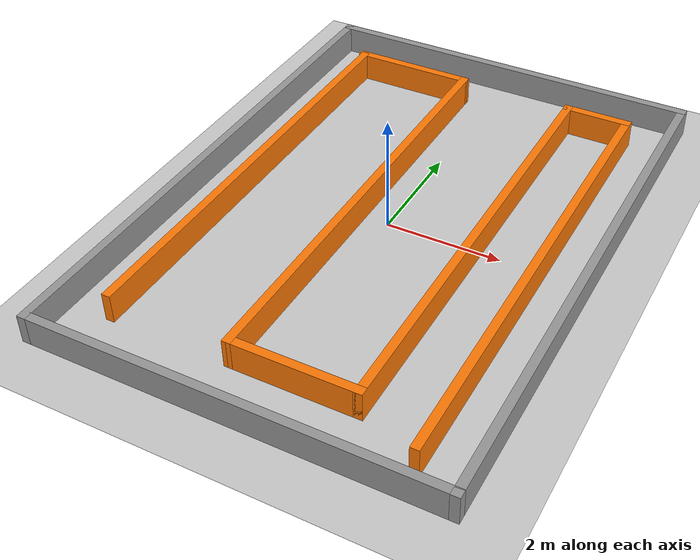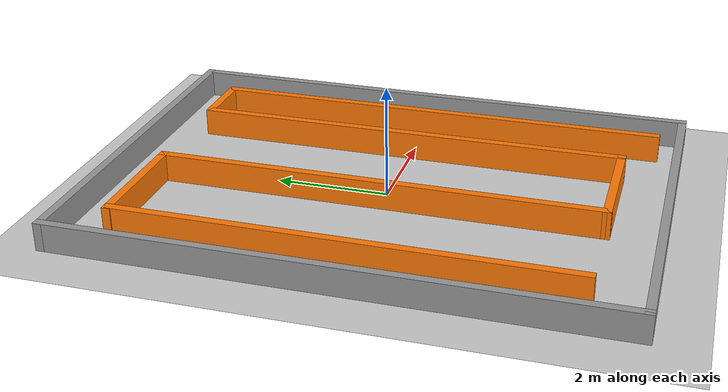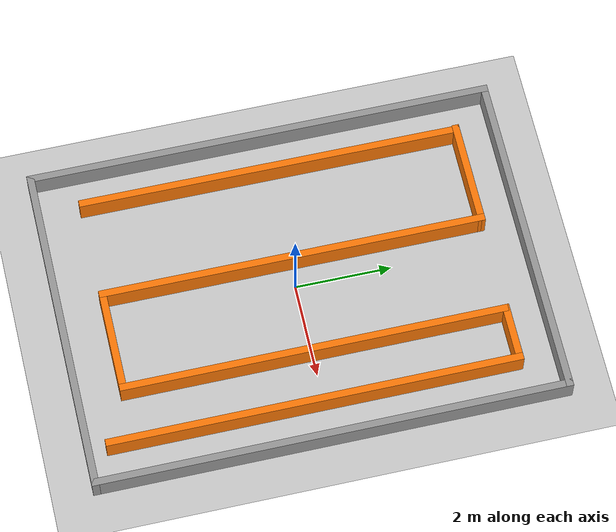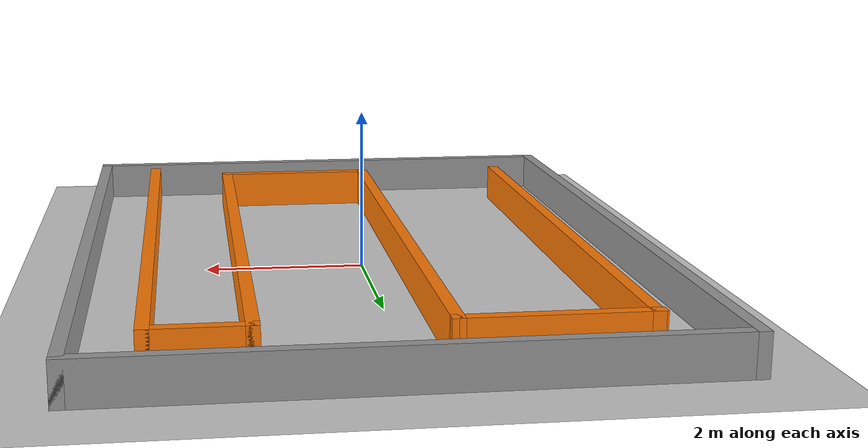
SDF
<sdf version="1.7">
 <world name="default">
  <light name="sun" type="directional">
   <pose>0 0 10 0 -0 0</pose>
   <diffuse>0.8 0.8 0.8 1</diffuse>
   <specular>0.2 0.2 0.2 1</specular>
   <attenuation>
    <range>1000</range>
    <constant>0.9</constant>
    <linear>0.01</linear>
    <quadratic>0.001</quadratic>
   </attenuation>
   <direction>-0.5 0.1 -0.9</direction>
   <spot><inner_angle>0</inner_angle><outer_angle>0</outer_angle><falloff>0</falloff></spot>
  </light>
  <model name="ground_plane">
   <static>1</static>
   <link name="link">
    <collision name="collision">
     <geometry><plane><normal>0 0 1</normal><size>100 100</size></plane></geometry>
     <surface><friction><ode><mu>100</mu><mu2>50</mu2></ode></friction></surface>
    </collision>
    <visual name="visual">
     <cast_shadows>0</cast_shadows>
     <geometry><plane><normal>0 0 1</normal><size>100 100</size></plane></geometry>
     <material>
      <script><uri>file://media/materials/scripts/gazebo.material</uri><name>Gazebo/Grey</name></script>
     </material>
    </visual>
   </link>
  </model>
  <gravity>0 0 -9.8</gravity>
  <magnetic_field>6e-06 2.3e-05 -4.2e-05</magnetic_field>
  <atmosphere type="adiabatic"/>
  <physics type="ode">
   <max_step_size>0.001</max_step_size>
   <real_time_factor>1</real_time_factor>
   <real_time_update_rate>1000</real_time_update_rate>
  </physics>
  <scene><ambient>0.4 0.4 0.4 1</ambient><background>0.7 0.7 0.7 1</background><shadows>1</shadows></scene>
  <audio><device>default</device></audio>
  <spherical_coordinates>
   <surface_model>EARTH_WGS84</surface_model>
   <latitude_deg>0</latitude_deg>
   <longitude_deg>0</longitude_deg>
   <elevation>0</elevation>
   <heading_deg>0</heading_deg>
  </spherical_coordinates>
  <model name="teskan">
   <model name="labirin">
    <link name="Wall_10">
     <collision name="Wall_10_Collision">
      <geometry><box><size>8.01802 0.15 0.5</size></box></geometry>
      <pose>0 0 0.25 0 -0 0</pose>
     </collision>
     <visual name="Wall_10_Visual">
      <pose>0 0 0.25 0 -0 0</pose>
      <geometry><box><size>8.01802 0.15 0.5</size></box></geometry>
      <material>
       <script><uri>file://media/materials/scripts/gazebo.material</uri><name>Gazebo/Grey</name></script>
       <ambient>0.996078 0.47451 0.0196078 1</ambient>
      </material>
      <meta><layer>0</layer></meta>
     </visual>
     <pose>-0.535 0.067 0 0 -0 -1.57283</pose>
    </link>
    <link name="Wall_11">
     <collision name="Wall_11_Collision">
      <geometry><box><size>2.25 0.15 0.5</size></box></geometry>
      <pose>0 0 0.25 0 -0 0</pose>
     </collision>
     <visual name="Wall_11_Visual">
      <pose>0 0 0.25 0 -0 0</pose>
      <geometry><box><size>2.25 0.15 0.5</size></box></geometry>
      <material>
       <script><uri>file://media/materials/scripts/gazebo.material</uri><name>Gazebo/Grey</name></script>
       <ambient>0.996078 0.47451 0.0196078 1</ambient>
      </material>
      <meta><layer>0</layer></meta>
     </visual>
     <pose>0.507 -3.867 0 0 -0 0</pose>
    </link>
    <link name="Wall_12">
     <collision name="Wall_12_Collision">
      <geometry><box><size>8 0.15 0.5</size></box></geometry>
      <pose>0 0 0.25 0 -0 0</pose>
     </collision>
     <visual name="Wall_12_Visual">
      <pose>0 0 0.25 0 -0 0</pose>
      <geometry><box><size>8 0.15 0.5</size></box></geometry>
      <material>
       <script><uri>file://media/materials/scripts/gazebo.material</uri><name>Gazebo/Grey</name></script>
       <ambient>0.996078 0.47451 0.0196078 1</ambient>
      </material>
      <meta><layer>0</layer></meta>
     </visual>
     <pose>1.557 0.058 0 0 -0 1.5708</pose>
    </link>
    <link name="Wall_13">
     <collision name="Wall_13_Collision">
      <geometry><box><size>1.25 0.15 0.5</size></box></geometry>
      <pose>0 0 0.25 0 -0 0</pose>
     </collision>
     <visual name="Wall_13_Visual">
      <pose>0 0 0.25 0 -0 0</pose>
      <geometry><box><size>1.25 0.15 0.5</size></box></geometry>
      <material>
       <script><uri>file://media/materials/scripts/gazebo.material</uri><name>Gazebo/Grey</name></script>
       <ambient>0.996078 0.47451 0.0196078 1</ambient>
      </material>
      <meta><layer>0</layer></meta>
     </visual>
     <pose>2.107 3.983 0 0 -0 0</pose>
    </link>
    <link name="Wall_14">
     <collision name="Wall_14_Collision">
      <geometry><box><size>8.5 0.15 0.5</size></box></geometry>
      <pose>0 0 0.25 0 -0 0</pose>
     </collision>
     <visual name="Wall_14_Visual">
      <pose>0 0 0.25 0 -0 0</pose>
      <geometry><box><size>8.5 0.15 0.5</size></box></geometry>
      <material>
       <script><uri>file://media/materials/scripts/gazebo.material</uri><name>Gazebo/Grey</name></script>
       <ambient>0.996078 0.47451 0.0196078 1</ambient>
      </material>
      <meta><layer>0</layer></meta>
     </visual>
     <pose>2.657 -0.192 0 0 -0 -1.5708</pose>
    </link>
    <link name="Wall_16">
     <collision name="Wall_16_Collision">
      <geometry><box><size>9.75 0.15 0.5</size></box></geometry>
      <pose>0 0 0.25 0 -0 0</pose>
     </collision>
     <visual name="Wall_16_Visual">
      <pose>0 0 0.25 0 -0 0</pose>
      <geometry><box><size>9.75 0.15 0.5</size></box></geometry>
      <material>
       <script><uri>file://media/materials/scripts/gazebo.material</uri><name>Gazebo/Grey</name></script>
       <ambient>1 1 1 1</ambient>
      </material>
      <meta><layer>0</layer></meta>
     </visual>
     <pose>-3.425 0 0 0 -0 -1.5708</pose>
    </link>
    <link name="Wall_17">
     <collision name="Wall_17_Collision">
      <geometry><box><size>7 0.15 0.5</size></box></geometry>
      <pose>0 0 0.25 0 -0 0</pose>
     </collision>
     <visual name="Wall_17_Visual">
      <pose>0 0 0.25 0 -0 0</pose>
      <geometry><box><size>7 0.15 0.5</size></box></geometry>
      <material>
       <script><uri>file://media/materials/scripts/gazebo.material</uri><name>Gazebo/Grey</name></script>
       <ambient>1 1 1 1</ambient>
      </material>
      <meta><layer>0</layer></meta>
     </visual>
     <pose>-0 -4.8 0 0 -0 0</pose>
    </link>
    <link name="Wall_20">
     <collision name="Wall_20_Collision">
      <geometry><box><size>9.75 0.15 0.5</size></box></geometry>
      <pose>0 0 0.25 0 -0 0</pose>
     </collision>
     <visual name="Wall_20_Visual">
      <pose>0 0 0.25 0 -0 0</pose>
      <geometry><box><size>9.75 0.15 0.5</size></box></geometry>
      <material>
       <script><uri>file://media/materials/scripts/gazebo.material</uri><name>Gazebo/Grey</name></script>
       <ambient>1 1 1 1</ambient>
      </material>
      <meta><layer>0</layer></meta>
     </visual>
     <pose>3.425 0 0 0 -0 -1.5708</pose>
    </link>
    <link name="Wall_5">
     <collision name="Wall_5_Collision">
      <geometry><box><size>7 0.15 0.5</size></box></geometry>
      <pose>0 0 0.25 0 -0 0</pose>
     </collision>
     <visual name="Wall_5_Visual">
      <pose>0 0 0.25 0 -0 0</pose>
      <geometry><box><size>7 0.15 0.5</size></box></geometry>
      <material>
       <script><uri>file://media/materials/scripts/gazebo.material</uri><name>Gazebo/Grey</name></script>
       <ambient>1 1 1 1</ambient>
      </material>
      <meta><layer>0</layer></meta>
     </visual>
     <pose>-0 4.8 0 0 -0 0</pose>
    </link>
    <link name="Wall_7">
     <collision name="Wall_7_Collision">
      <geometry><box><size>8.01915 0.15 0.5</size></box></geometry>
      <pose>0 0 0.25 0 -0 0</pose>
     </collision>
     <visual name="Wall_7_Visual">
      <pose>0 0 0.25 0 -0 0</pose>
      <geometry><box><size>8.01915 0.15 0.5</size></box></geometry>
      <material>
       <script><uri>file://media/materials/scripts/gazebo.material</uri><name>Gazebo/Grey</name></script>
       <ambient>0.996078 0.47451 0.0196078 1</ambient>
      </material>
      <meta><layer>0</layer></meta>
     </visual>
     <pose>-2.635 0.067227 0 0 -0 1.56876</pose>
    </link>
    <link name="Wall_9">
     <collision name="Wall_9_Collision">
      <geometry><box><size>2.27011 0.15 0.5</size></box></geometry>
      <pose>0 0 0.25 0 -0 0</pose>
     </collision>
     <visual name="Wall_9_Visual">
      <pose>0 0 0.25 0 -0 0</pose>
      <geometry><box><size>2.27011 0.15 0.5</size></box></geometry>
      <material>
       <script><uri>file://media/materials/scripts/gazebo.material</uri><name>Gazebo/Grey</name></script>
       <ambient>0.996078 0.47451 0.0196078 1</ambient>
      </material>
      <meta><layer>0</layer></meta>
     </visual>
     <pose>-1.58706 4.00123 0 0 -0 -0.000214</pose>
    </link>
    <static>1</static>
   </model>
   <static>0</static>
   <pose>0.048789 -0.002865 0 0 -0 0</pose>
  </model>
 </world>
</sdf>
